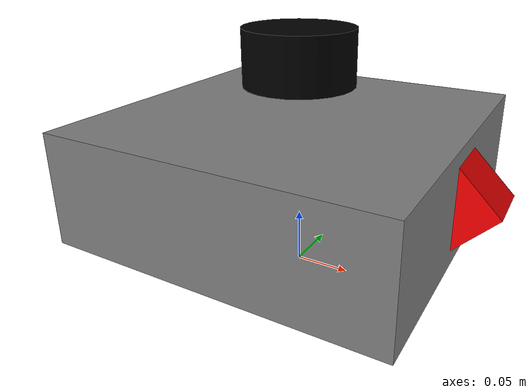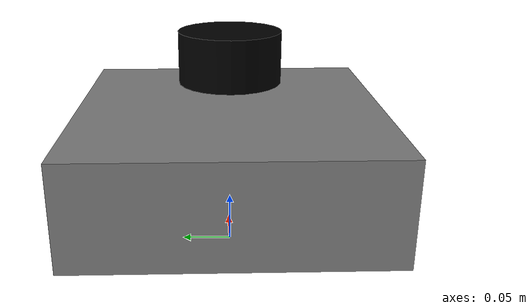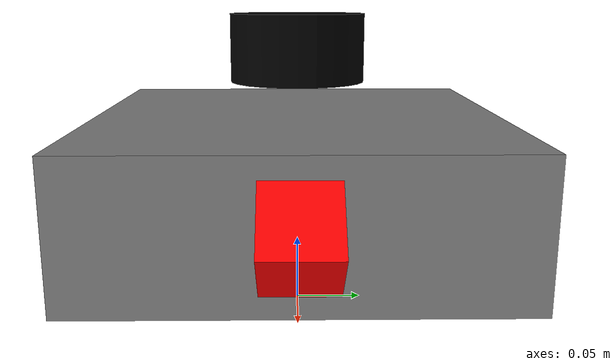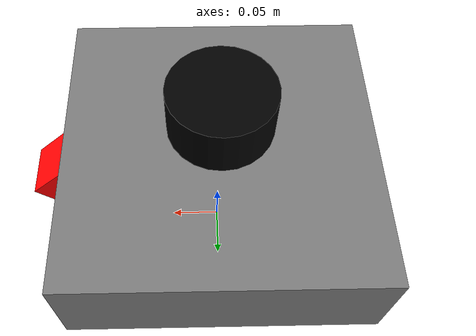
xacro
<?xml version="1.0"?>
<robot name="uav_drone" xmlns:xacro="http://www.ros.org/wiki/xacro">

    <xacro:arg name="prefix" default="" />

    <!-- 1. Common Properties (Materials, Inertias) -->
    <xacro:include filename="common_properties.xacro" />

    <!-- 2. Sensors -->
    <xacro:include filename="camera.xacro" />
    <xacro:include filename="imu.xacro" />
    <xacro:include filename="gps.xacro" />
    <xacro:include filename="lidar.xacro" />
    <xacro:include filename="altimeter.xacro" />

    <!-- 3. Flight Control -->
    <xacro:include filename="flight_control.xacro" />

    <!-- BASE DEL DRON (CHASIS)                                   -->
    <xacro:property name="chassis_length" value="0.3" />
    <xacro:property name="chassis_width" value="0.3" />
    <xacro:property name="chassis_height" value="0.1" />

    <link name="$(arg prefix)base_footprint"/>

    <joint name="$(arg prefix)base_joint" type="fixed">
        <parent link="$(arg prefix)base_footprint"/>
        <child link="$(arg prefix)base_link"/>
        <origin xyz="0 0 0.1" rpy="0 0 0"/>
    </joint>

    <link name="$(arg prefix)base_link">
        <visual>
            <geometry>
                <box size="${chassis_length} ${chassis_width} ${chassis_height}"/>
            </geometry>
            <material name="grey"/>
        </visual>
        <collision>
            <geometry>
                <box size="${chassis_length} ${chassis_width} ${chassis_height}"/>
            </geometry>
        </collision>
        <xacro:box_inertia m="1.5" x="${chassis_length}" y="${chassis_width}" z="${chassis_height}"
                           o_xyz="0 0 0" o_rpy="0 0 0" />
    </link>

    <gazebo reference="$(arg prefix)base_link">
        <material>Gazebo/DarkGrey</material>
    </gazebo>

</robot>

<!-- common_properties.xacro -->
<robot xmlns:xacro="http://www.ros.org/wiki/xacro">

  <!-- Materials -->
  <material name="blue">   <color rgba="0 0 0.8 1"/> </material>
  <material name="black">  <color rgba="0 0 0 1"/>   </material>
  <material name="white">  <color rgba="1 1 1 1"/>   </material>
  <material name="red">    <color rgba="1 0 0 1"/>   </material>
  <material name="grey">   <color rgba="0.5 0.5 0.5 1"/> </material>
  <material name="orange"> <color rgba="1.0 0.5 0 1"/> </material>

  <!-- Inertia Macros -->
  <xacro:macro name="box_inertia" params="m x y z o_xyz o_rpy" >
    <inertial>
      <mass value="${m}"/>
      <origin xyz="${o_xyz}" rpy="${o_rpy}"/>
      <inertia ixx="${m/12.0 * (y*y + z*z)}" ixy="0" ixz="0"
               iyy="${m/12.0 * (x*x + z*z)}" iyz="0"
               izz="${m/12.0 * (x*x + y*y)}"/>
    </inertial>
  </xacro:macro>

  <xacro:macro name="cylinder_inertia" params="m r h">
    <inertial>
      <mass value="${m}"/>
      <origin xyz="0 0 0" rpy="0 0 0" />
      <inertia ixx="${(m/12) * (3*r*r + h*h)}" ixy = "0" ixz = "0"
               iyy="${(m/12) * (3*r*r + h*h)}" iyz = "0"
               izz="${(m/2) * (r*r)}"/>
    </inertial>
  </xacro:macro>

  <xacro:macro name="sphere_inertia" params="m r">
    <inertial>
      <mass value="${m}"/>
      <origin xyz="0 0 0" rpy="0 0 0" />
      <inertia ixx="${(2/5) * m * (r*r)}" ixy="0.0" ixz="0.0"
               iyy="${(2/5) * m * (r*r)}" iyz="0.0"
               izz="${(2/5) * m * (r*r)}" />
    </inertial>
  </xacro:macro>

</robot>

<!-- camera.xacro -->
<robot xmlns:xacro="http://www.ros.org/wiki/xacro">

  <!-- Camera Link -->
  <link name="$(arg prefix)camera_link">
    <visual>
      <geometry>
        <box size="0.05 0.05 0.05"/>
      </geometry>
      <material name="red"/>
    </visual>
    <collision>
      <geometry>
        <box size="0.05 0.05 0.05"/>
      </geometry>
    </collision>
    <xacro:box_inertia m="0.1" x="0.05" y="0.05" z="0.05" o_xyz="0 0 0" o_rpy="0 0 0" />
  </link>

  <joint name="$(arg prefix)camera_joint" type="fixed">
    <parent link="$(arg prefix)base_link"/>
    <child link="$(arg prefix)camera_link"/>
    <origin xyz="0.15 0 0" rpy="0 0.7854 0"/>
  </joint>

  <!-- Gazebo Sensor Plugin -->
  <gazebo reference="$(arg prefix)camera_link">
    <material>Gazebo/Red</material>
    <sensor name="camera" type="camera">
      <pose>0 0 0 0 0 0</pose>
      <visualize>true</visualize>
      <update_rate>10</update_rate>
      <topic>$(arg prefix)camera/image_raw</topic>
      <camera>
        <horizontal_fov>1.089</horizontal_fov>
        <image>
          <format>R8G8B8</format>
          <width>640</width>
          <height>480</height>
        </image>
        <clip>
          <near>0.05</near>
          <far>8.0</far>
        </clip>
      </camera>
    </sensor>
  </gazebo>

</robot>

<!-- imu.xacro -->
<robot xmlns:xacro="http://www.ros.org/wiki/xacro">

  <!-- IMU Link (invisible, no visual needed) -->
  <link name="$(arg prefix)imu_link"/>

  <joint name="$(arg prefix)imu_joint" type="fixed">
    <parent link="$(arg prefix)base_link"/>
    <child link="$(arg prefix)imu_link"/>
    <origin xyz="0 0 0" rpy="0 0 0"/>
  </joint>

  <!-- Gazebo IMU Sensor Plugin -->
  <gazebo reference="$(arg prefix)imu_link">
    <sensor name="imu_sensor" type="imu">
      <always_on>1</always_on>
      <update_rate>100</update_rate>
      <visualize>true</visualize>
      <topic>$(arg prefix)imu</topic>
    </sensor>
  </gazebo>

</robot>

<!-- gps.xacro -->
<robot xmlns:xacro="http://www.ros.org/wiki/xacro">

  <!-- GPS Link (invisible, no visual needed) -->
  <link name="$(arg prefix)gps_link"/>

  <joint name="$(arg prefix)gps_joint" type="fixed">
    <parent link="$(arg prefix)base_link"/>
    <child link="$(arg prefix)gps_link"/>
    <origin xyz="0 0 0.07" rpy="0 0 0"/>
  </joint>

  <!-- Gazebo GPS (NavSat) Sensor Plugin -->
  <gazebo reference="$(arg prefix)gps_link">
    <sensor name="gps_sensor" type="navsat">
      <always_on>1</always_on>
      <update_rate>10</update_rate>
      <topic>$(arg prefix)gps</topic>
    </sensor>
  </gazebo>

</robot>

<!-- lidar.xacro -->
<robot xmlns:xacro="http://www.ros.org/wiki/xacro">

  <!-- Lidar Link (Small black cylinder) -->
  <link name="$(arg prefix)lidar_link">
    <visual>
      <geometry>
        <cylinder radius="0.05" length="0.05"/>
      </geometry>
      <material name="black"/>
    </visual>
    <collision>
      <geometry>
        <cylinder radius="0.05" length="0.05"/>
      </geometry>
    </collision>
    <xacro:cylinder_inertia m="0.1" r="0.05" h="0.05"/>
  </link>

  <!-- Lidar Joint (Attached to base_link, on top) -->
  <joint name="$(arg prefix)lidar_joint" type="fixed">
    <parent link="$(arg prefix)base_link"/>
    <child link="$(arg prefix)lidar_link"/>
    <origin xyz="0 0 0.1" rpy="0 0 0"/>
  </joint>

  <!-- Gazebo Sensor Plugin (Harmonic 'gpu_lidar') -->
  <gazebo reference="$(arg prefix)lidar_link">
    <material>Gazebo/Black</material>
    <sensor name="lidar" type="gpu_lidar">
      <pose>0 0 0 0 0 0</pose>
      <visualize>true</visualize>
      <update_rate>10</update_rate>
      <topic>$(arg prefix)scan</topic>
      <gz_frame_id>$(arg prefix)lidar_link</gz_frame_id>
      <lidar>
        <scan>
          <horizontal>
            <samples>360</samples>
            <resolution>1</resolution>
            <min_angle>-3.1415</min_angle>
            <max_angle>3.1415</max_angle>
          </horizontal>
        </scan>
        <range>
          <min>0.1</min>
          <max>10.0</max>
          <resolution>0.01</resolution>
        </range>
      </lidar>
    </sensor>
  </gazebo>

</robot>

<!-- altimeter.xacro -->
<robot xmlns:xacro="http://www.ros.org/wiki/xacro">

  <!-- Altimeter Link (infrared/ultrasonic pointing down) -->
  <link name="$(arg prefix)altimeter_link"/>

  <joint name="$(arg prefix)altimeter_joint" type="fixed">
    <parent link="$(arg prefix)base_link"/>
    <child link="$(arg prefix)altimeter_link"/>
    <!-- Debajo del chasis, apuntando hacia abajo (pitch = pi/2) -->
    <origin xyz="0 0 -0.05" rpy="0 1.5708 0"/>
  </joint>

  <!-- Gazebo Sensor - Single-ray gpu_lidar acting as range altimeter -->
  <gazebo reference="$(arg prefix)altimeter_link">
    <sensor name="altimeter" type="gpu_lidar">
      <pose>0 0 0 0 0 0</pose>
      <visualize>true</visualize>
      <update_rate>10</update_rate>
      <topic>$(arg prefix)scan_altitude</topic>
      <gz_frame_id>$(arg prefix)altimeter_link</gz_frame_id>
      <lidar>
        <scan>
          <horizontal>
            <samples>1</samples>
            <resolution>1</resolution>
            <min_angle>0</min_angle>
            <max_angle>0</max_angle>
          </horizontal>
        </scan>
        <range>
          <min>0.10</min>
          <max>30.0</max>
          <resolution>0.01</resolution>
        </range>
      </lidar>
    </sensor>
  </gazebo>

</robot>
